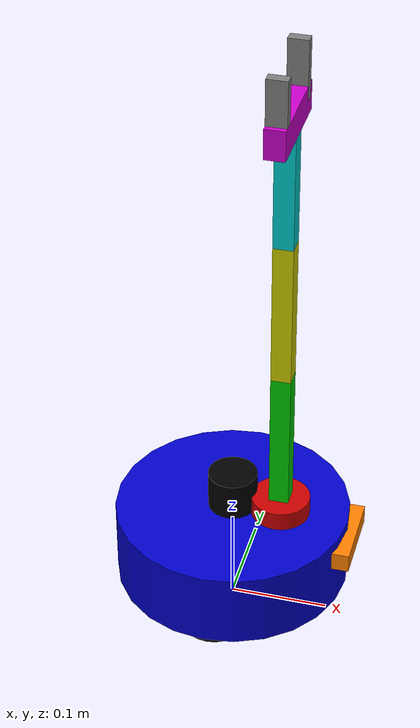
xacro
<?xml version="1.0"?>
<robot name="my_mobile_manipulator" xmlns:xacro="http://ros.org/wiki/xacro">

  <xacro:property name="base_length" value="0.24"/>
  <xacro:property name="base_width" value="0.16"/>
  <xacro:property name="base_height" value="0.08"/>
  <xacro:property name="wheel_radius" value="0.035"/>
  <xacro:property name="wheel_width" value="0.02"/>
  <xacro:property name="wheel_separation" value="0.19"/>
  <xacro:property name="arm_link_len" value="0.15"/>
  <xacro:property name="arm_link_3_len" value="0.12"/>

  <xacro:macro name="cylinder_inertial" params="m r h">
    <inertial>
      <mass value="${m}"/>
      <inertia ixx="${m*(3*r*r+h*h)/12}" ixy="0" ixz="0" iyy="${m*(3*r*r+h*h)/12}" iyz="0" izz="${m*r*r/2}"/>
    </inertial>
  </xacro:macro>
  <xacro:macro name="box_inertial" params="m x y z">
    <inertial>
      <mass value="${m}"/>
      <inertia ixx="${m*(y*y+z*z)/12}" ixy="0" ixz="0" iyy="${m*(x*x+z*z)/12}" iyz="0" izz="${m*(x*x+y*y)/12}"/>
    </inertial>
  </xacro:macro>
  <xacro:macro name="sphere_inertial" params="m r">
    <inertial>
      <mass value="${m}"/>
      <inertia ixx="${2*m*r*r/5}" ixy="0" ixz="0" iyy="${2*m*r*r/5}" iyz="0" izz="${2*m*r*r/5}"/>
    </inertial>
  </xacro:macro>

  <material name="blue"><color rgba="0 0 0.8 1"/></material>
  <material name="black"><color rgba="0 0 0 1"/></material>
  <material name="white"><color rgba="1 1 1 1"/></material>
  <material name="grey"><color rgba="0.5 0.5 0.5 1"/></material>
  <material name="red"><color rgba="0.8 0 0 1"/></material>
  <material name="green"><color rgba="0 0.8 0 1"/></material>
  <material name="yellow"><color rgba="0.8 0.8 0 1"/></material>
  <material name="cyan"><color rgba="0 0.8 0.8 1"/></material>
  <material name="magenta"><color rgba="0.8 0 0.8 1"/></material>
  <material name="orange"><color rgba="1.0 0.5 0 1"/></material>

  <link name="base_footprint"/>
  <joint name="base_joint" type="fixed">
    <parent link="base_footprint"/>
    <child link="base_link"/>
    <origin xyz="0 0 ${wheel_radius + 0.005}" rpy="0 0 0"/>
  </joint>
  <link name="base_link">
    <visual>
      <origin xyz="0 0 ${base_height/2}" rpy="0 0 0"/>
      <geometry><cylinder length="${base_height}" radius="${base_length/2}"/></geometry>
      <material name="blue"/>
    </visual>
    <collision>
      <origin xyz="0 0 ${base_height/2}" rpy="0 0 0"/>
      <geometry><cylinder length="${base_height}" radius="${base_length/2}"/></geometry>
    </collision>
    <xacro:cylinder_inertial m="2.0" r="${base_length/2}" h="${base_height}"/>
  </link>

  <xacro:macro name="wheel" params="prefix reflect">
    <link name="${prefix}_wheel">
      <visual>
        <origin xyz="0 0 0" rpy="${pi/2} 0 0"/>
        <geometry><cylinder radius="${wheel_radius}" length="${wheel_width}"/></geometry>
        <material name="black"/>
      </visual>
      <collision>
        <origin xyz="0 0 0" rpy="${pi/2} 0 0"/>
        <geometry><cylinder radius="${wheel_radius}" length="${wheel_width}"/></geometry>
      </collision>
      <xacro:cylinder_inertial m="0.2" r="${wheel_radius}" h="${wheel_width}"/>
    </link>
    <joint name="${prefix}_wheel_joint" type="continuous">
      <parent link="base_link"/>
      <child link="${prefix}_wheel"/>
      <origin xyz="0 ${reflect*wheel_separation/2} ${wheel_radius*0.5}" rpy="0 0 0"/>
      <axis xyz="0 1 0"/>
    </joint>
  </xacro:macro>
  <xacro:wheel prefix="left" reflect="1"/>
  <xacro:wheel prefix="right" reflect="-1"/>

  <link name="front_caster">
    <visual><geometry><sphere radius="0.015"/></geometry><material name="white"/></visual>
    <collision><geometry><sphere radius="0.015"/></geometry></collision>
    <xacro:sphere_inertial m="0.05" r="0.015"/>
  </link>
  <joint name="front_caster_joint" type="fixed">
    <parent link="base_link"/>
    <child link="front_caster"/>
    <origin xyz="${base_length/2 - 0.02} 0 0" rpy="0 0 0"/>
  </joint>
  <gazebo reference="front_caster"><mu1>0.001</mu1><mu2>0.001</mu2><material>Gazebo/White</material></gazebo>

  <link name="back_caster">
    <visual><geometry><sphere radius="0.015"/></geometry><material name="white"/></visual>
    <collision><geometry><sphere radius="0.015"/></geometry></collision>
    <xacro:sphere_inertial m="0.05" r="0.015"/>
  </link>
  <joint name="back_caster_joint" type="fixed">
    <parent link="base_link"/>
    <child link="back_caster"/>
    <origin xyz="-${base_length/2 - 0.02} 0 0" rpy="0 0 0"/>
  </joint>
  <gazebo reference="back_caster"><mu1>0.001</mu1><mu2>0.001</mu2><material>Gazebo/White</material></gazebo>

  <link name="arm_base_link">
    <visual><geometry><cylinder radius="0.03" length="0.04"/></geometry><material name="red"/></visual>
    <collision><geometry><cylinder radius="0.03" length="0.04"/></geometry></collision>
    <xacro:cylinder_inertial m="0.2" r="0.03" h="0.04"/>
  </link>
  <joint name="arm_joint_1" type="revolute">
    <parent link="base_link"/>
    <child link="arm_base_link"/>
    <origin xyz="0.05 0 ${base_height}" rpy="0 0 0"/>
    <axis xyz="0 0 1"/>
    <limit lower="-1.57" upper="1.57" effort="5.0" velocity="1.0"/>
  </joint>

  <link name="arm_link_1">
    <visual><origin xyz="0 0 ${arm_link_len/2}"/><geometry><box size="0.02 0.02 ${arm_link_len}"/></geometry><material name="green"/></visual>
    <collision><origin xyz="0 0 ${arm_link_len/2}"/><geometry><box size="0.02 0.02 ${arm_link_len}"/></geometry></collision>
    <xacro:box_inertial m="0.1" x="0.02" y="0.02" z="${arm_link_len}"/>
  </link>
  <joint name="arm_joint_2" type="revolute">
    <parent link="arm_base_link"/>
    <child link="arm_link_1"/>
    <origin xyz="0 0 0.02" rpy="0 0 0"/>
    <axis xyz="0 1 0"/>
    <limit lower="-1.57" upper="1.57" effort="5.0" velocity="1.0"/>
  </joint>

  <link name="arm_link_2">
    <visual><origin xyz="0 0 ${arm_link_len/2}"/><geometry><box size="0.02 0.02 ${arm_link_len}"/></geometry><material name="yellow"/></visual>
    <collision><origin xyz="0 0 ${arm_link_len/2}"/><geometry><box size="0.02 0.02 ${arm_link_len}"/></geometry></collision>
    <xacro:box_inertial m="0.1" x="0.02" y="0.02" z="${arm_link_len}"/>
  </link>
  <joint name="arm_joint_3" type="revolute">
    <parent link="arm_link_1"/>
    <child link="arm_link_2"/>
    <origin xyz="0 0 ${arm_link_len}" rpy="0 0 0"/>
    <axis xyz="0 1 0"/>
    <limit lower="-2.0" upper="2.0" effort="5.0" velocity="1.0"/>
  </joint>

  <link name="arm_link_3">
    <visual><origin xyz="0 0 ${arm_link_3_len/2}"/><geometry><box size="0.02 0.02 ${arm_link_3_len}"/></geometry><material name="cyan"/></visual>
    <collision><origin xyz="0 0 ${arm_link_3_len/2}"/><geometry><box size="0.02 0.02 ${arm_link_3_len}"/></geometry></collision>
    <xacro:box_inertial m="0.05" x="0.02" y="0.02" z="${arm_link_3_len}"/>
  </link>
  <joint name="arm_joint_4" type="revolute">
    <parent link="arm_link_2"/>
    <child link="arm_link_3"/>
    <origin xyz="0 0 ${arm_link_len}" rpy="0 0 0"/>
    <axis xyz="0 1 0"/>
    <limit lower="-1.57" upper="1.57" effort="5.0" velocity="1.0"/>
  </joint>

  <link name="gripper_base_link">
    <visual><geometry><box size="0.02 0.10 0.03"/></geometry><material name="magenta"/></visual>
    <collision><geometry><box size="0.02 0.10 0.03"/></geometry></collision>
    <xacro:box_inertial m="0.1" x="0.02" y="0.10" z="0.03"/>
  </link>
  <joint name="gripper_base_joint" type="fixed">
    <parent link="arm_link_3"/>
    <child link="gripper_base_link"/>
    <origin xyz="0 0 ${arm_link_3_len + 0.01}" rpy="0 0 0"/>
  </joint>

  <link name="gripper_left_finger">
    <visual><origin xyz="0 0 0.03"/><geometry><box size="0.02 0.01 0.06"/></geometry><material name="grey"/></visual>
    <collision><origin xyz="0 0 0.03"/><geometry><box size="0.02 0.01 0.06"/></geometry></collision>
    <xacro:box_inertial m="0.05" x="0.02" y="0.01" z="0.06"/>
  </link>
  <joint name="finger_joint_1" type="prismatic">
    <parent link="gripper_base_link"/>
    <child link="gripper_left_finger"/>
    <origin xyz="0 0.04 0" rpy="0 0 0"/>
    <axis xyz="0 1 0"/>
    <limit lower="-0.04" upper="0.0" effort="10.0" velocity="0.5"/>
  </joint>

  <link name="gripper_right_finger">
    <visual><origin xyz="0 0 0.03"/><geometry><box size="0.02 0.01 0.06"/></geometry><material name="grey"/></visual>
    <collision><origin xyz="0 0 0.03"/><geometry><box size="0.02 0.01 0.06"/></geometry></collision>
    <xacro:box_inertial m="0.05" x="0.02" y="0.01" z="0.06"/>
  </link>
  <joint name="finger_joint_2" type="prismatic">
    <parent link="gripper_base_link"/>
    <child link="gripper_right_finger"/>
    <origin xyz="0 -0.04 0" rpy="0 0 0"/>
    <axis xyz="0 1 0"/>
    <limit lower="0.0" upper="0.04" effort="10.0" velocity="0.5"/>
  </joint>

  <link name="laser_link">
    <visual><geometry><cylinder radius="0.025" length="0.04"/></geometry><material name="black"/></visual>
    <collision><geometry><cylinder radius="0.025" length="0.04"/></geometry></collision>
    <xacro:cylinder_inertial m="0.1" r="0.025" h="0.04"/>
  </link>
  <joint name="laser_joint" type="fixed">
    <parent link="base_link"/>
    <child link="laser_link"/>
    <origin xyz="0 0 ${base_height + 0.02}" rpy="0 0 0"/>
  </joint>

  <link name="imu_link"/><joint name="imu_joint" type="fixed"><parent link="base_link"/><child link="imu_link"/><origin xyz="0 0 0"/></joint>

  <link name="camera_link">
    <visual><geometry><box size="0.02 0.08 0.02"/></geometry><material name="orange"/></visual>
    <collision><geometry><box size="0.02 0.08 0.02"/></geometry></collision>
    <xacro:box_inertial m="0.05" x="0.02" y="0.08" z="0.02"/>
  </link>
  <joint name="camera_joint" type="fixed">
    <parent link="base_link"/>
    <child link="camera_link"/>
    <origin xyz="${base_length/2} 0 ${base_height - 0.02}" rpy="0 0 0"/>
  </joint>
  <link name="camera_depth_frame"/>
  <joint name="camera_optical_joint" type="fixed"><parent link="camera_link"/><child link="camera_depth_frame"/><origin xyz="0 0 0" rpy="${-pi/2} 0 ${-pi/2}"/></joint>

  <gazebo reference="base_link"><material>Gazebo/Blue</material></gazebo>
  <gazebo reference="left_wheel"><material>Gazebo/Black</material></gazebo>
  <gazebo reference="right_wheel"><material>Gazebo/Black</material></gazebo>
  <gazebo reference="arm_base_link"><material>Gazebo/Red</material></gazebo>
  <gazebo reference="arm_link_1"><material>Gazebo/Green</material></gazebo>
  <gazebo reference="arm_link_2"><material>Gazebo/Yellow</material></gazebo>
  <gazebo reference="arm_link_3"><material>Gazebo/Cyan</material></gazebo>
  <gazebo reference="gripper_base_link"><material>Gazebo/Purple</material></gazebo>
  <gazebo reference="gripper_left_finger"><material>Gazebo/Grey</material></gazebo>
  <gazebo reference="gripper_right_finger"><material>Gazebo/Grey</material></gazebo>
  <gazebo reference="laser_link"><material>Gazebo/Black</material></gazebo>
  <gazebo reference="camera_link"><material>Gazebo/Orange</material></gazebo>

  <gazebo>
    <plugin name="diff_drive" filename="libgazebo_ros_diff_drive.so">
      <ros><namespace>/</namespace></ros>
      <left_joint>left_wheel_joint</left_joint>
      <right_joint>right_wheel_joint</right_joint>
      <wheel_separation>${wheel_separation}</wheel_separation>
      <wheel_diameter>${2*wheel_radius}</wheel_diameter>
      <max_wheel_torque>20</max_wheel_torque>
      <max_wheel_acceleration>1.0</max_wheel_acceleration>
      <publish_odom>true</publish_odom>
      <publish_odom_tf>true</publish_odom_tf>
      <publish_wheel_tf>true</publish_wheel_tf>
      <odometry_frame>odom</odometry_frame>
      <robot_base_frame>base_footprint</robot_base_frame>
    </plugin>
  </gazebo>

  <gazebo reference="laser_link">
    <sensor name="lidar" type="ray">
      <always_on>true</always_on>
      <visualize>true</visualize>
      <update_rate>10</update_rate>
      <ray>
        <scan><horizontal><samples>360</samples><resolution>1</resolution><min_angle>-3.14</min_angle><max_angle>3.14</max_angle></horizontal></scan>
        <range><min>0.12</min><max>3.5</max><resolution>0.015</resolution></range>
      </ray>
      <plugin name="scan" filename="libgazebo_ros_ray_sensor.so">
        <ros><remapping>~/out:=scan</remapping></ros>
        <output_type>sensor_msgs/LaserScan</output_type>
        <frame_name>laser_link</frame_name>
      </plugin>
    </sensor>
  </gazebo>

  <gazebo reference="imu_link">
    <gravity>true</gravity>
    <sensor name="imu_sensor" type="imu">
      <always_on>true</always_on>
      <update_rate>100</update_rate>
      <visualize>true</visualize>
      <plugin filename="libgazebo_ros_imu_sensor.so" name="imu_plugin">
        <topicName>imu</topicName>
        <bodyName>imu_link</bodyName>
        <updateRateHz>10.0</updateRateHz>
        <gaussianNoise>0.0</gaussianNoise>
        <xyzOffset>0 0 0</xyzOffset>
        <rpyOffset>0 0 0</rpyOffset>
        <frameName>imu_link</frameName>
        <initialOrientationAsReference>false</initialOrientationAsReference>
      </plugin>
    </sensor>
  </gazebo>

  <gazebo reference="camera_link">
    <sensor name="depth_camera" type="depth">
        <visualize>true</visualize>
        <update_rate>30.0</update_rate>
        <camera name="camera">
            <horizontal_fov>1.047</horizontal_fov>
            <image><width>640</width><height>480</height><format>R8G8B8</format></image>
            <clip><near>0.05</near><far>3</far></clip>
        </camera>
        <plugin name="depth_camera_controller" filename="libgazebo_ros_camera.so">
            <baseline>0.2</baseline>
            <alwaysOn>true</alwaysOn>
            <updateRate>0.0</updateRate>
            <frame_name>camera_depth_frame</frame_name>
            <pointCloudCutoff>0.5</pointCloudCutoff>
            <pointCloudCutoffMax>3.0</pointCloudCutoffMax>
            <hackBaseline>0</hackBaseline>
        </plugin>
    </sensor>
  </gazebo>

  <ros2_control name="GazeboSystem" type="system">
    <hardware><plugin>gazebo_ros2_control/GazeboSystem</plugin></hardware>
    <joint name="arm_joint_1"><command_interface name="position"/><state_interface name="position"/><state_interface name="velocity"/></joint>
    <joint name="arm_joint_2"><command_interface name="position"/><state_interface name="position"/><state_interface name="velocity"/></joint>
    <joint name="arm_joint_3"><command_interface name="position"/><state_interface name="position"/><state_interface name="velocity"/></joint>
    <joint name="arm_joint_4"><command_interface name="position"/><state_interface name="position"/><state_interface name="velocity"/></joint>
    <joint name="finger_joint_1"><command_interface name="position"/><state_interface name="position"/><state_interface name="velocity"/></joint>
    <joint name="finger_joint_2"><command_interface name="position"/><state_interface name="position"/><state_interface name="velocity"/></joint>
    <joint name="left_wheel_joint"><state_interface name="position"/><state_interface name="velocity"/></joint>
    <joint name="right_wheel_joint"><state_interface name="position"/><state_interface name="velocity"/></joint>
  </ros2_control>

  <gazebo>
    <plugin name="gazebo_ros2_control" filename="libgazebo_ros2_control.so">
      <parameters>$(find final_assignment_pkg)/config/controllers.yaml</parameters>
    </plugin>
  </gazebo>

  <gazebo reference="gripper_left_finger">
    <mu1>1000.0</mu1><mu2>1000.0</mu2><kp>100000.0</kp><kd>1.0</kd>
    <minDepth>0.001</minDepth><maxVel>0.1</maxVel>
    <material>Gazebo/Grey</material>
  </gazebo>
  <gazebo reference="gripper_right_finger">
    <mu1>1000.0</mu1><mu2>1000.0</mu2><kp>100000.0</kp><kd>1.0</kd>
    <minDepth>0.001</minDepth><maxVel>0.1</maxVel>
    <material>Gazebo/Grey</material>
  </gazebo>

  </robot>
